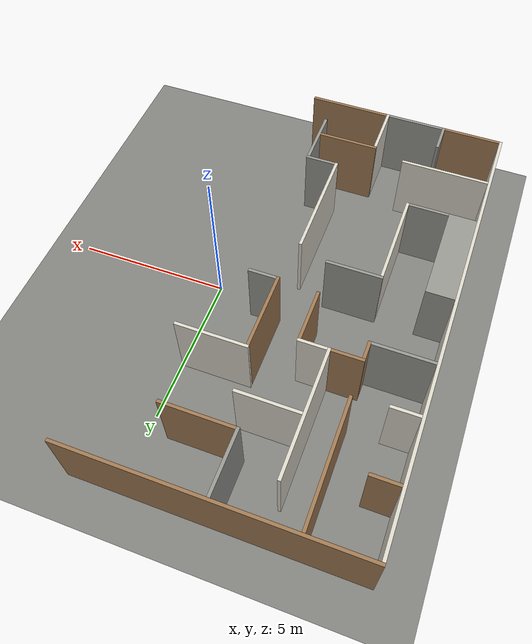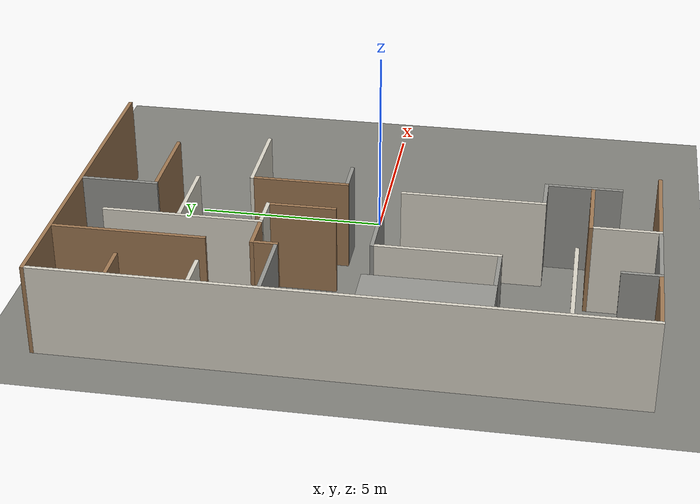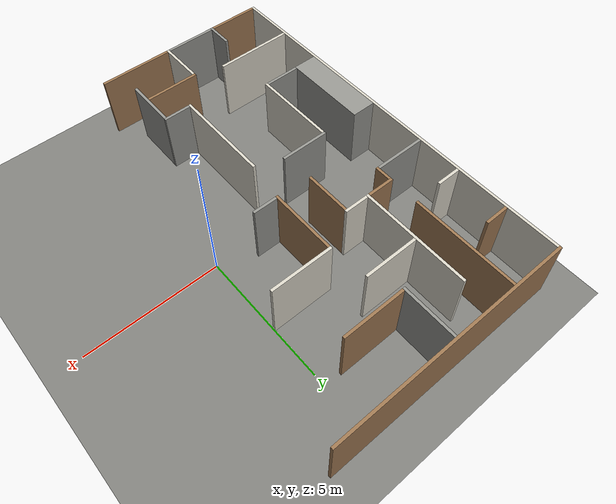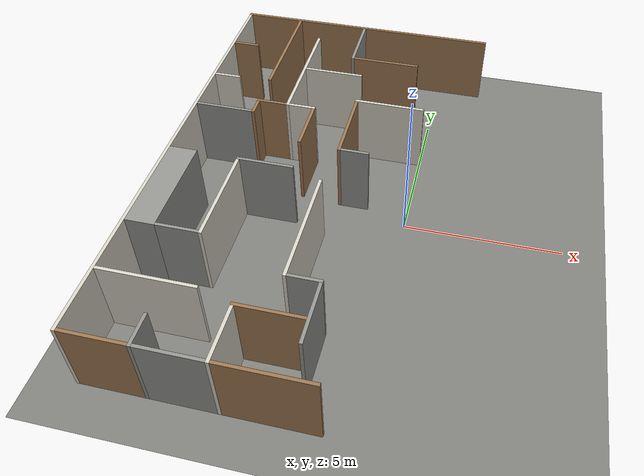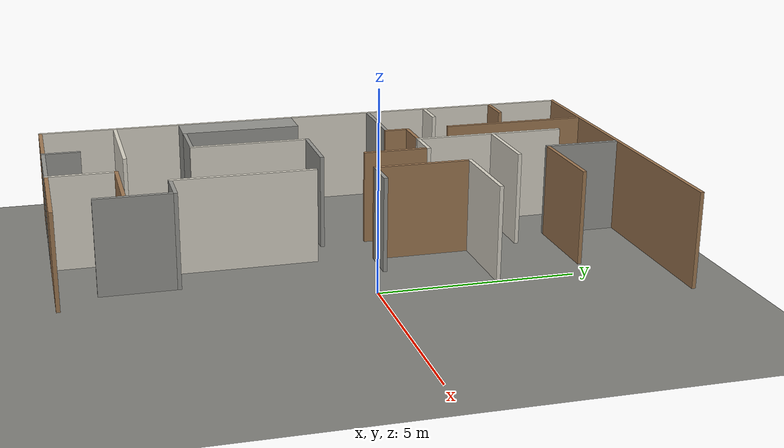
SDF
<sdf version="1.9">
 <world name="arena_world">
  <model name="ground_plane">
   <static>true</static>
   <link name="link">
    <collision name="collision">
     <geometry><plane><normal>0 0 1</normal><size>15.00 15.00</size></plane></geometry>
     <surface>
      <friction><ode><mu>0.8</mu><mu2>0.8</mu2></ode></friction>
      <contact><ode><kp>1e9</kp><kd>1.0</kd></ode></contact>
     </surface>
    </collision>
    <visual name="visual">
     <geometry><plane><normal>0 0 1</normal><size>15.00 15.00</size></plane></geometry>
     <material>
      <ambient>0.45 0.45 0.44 1</ambient>
      <diffuse>0.5 0.5 0.48 1</diffuse>
      <specular>0.15 0.15 0.15 1</specular>
      <pbr><metal><roughness>0.95</roughness><metalness>0.0</metalness></metal></pbr>
     </material>
    </visual>
   </link>
  </model>
  <model name="wall_000">
   <static>true</static>
   <pose>-2.9500 7.4500 1.2200 0 0 0</pose>
   <link name="link">
    <collision name="collision">
     <geometry><box><size>9.1000 0.1000 2.4400</size></box></geometry>
     <surface>
      <friction><ode><mu>0.7</mu><mu2>0.7</mu2></ode></friction>
      <contact><ode><kp>1e9</kp><kd>1.0</kd><max_vel>0.1</max_vel><min_depth>0.001</min_depth></ode></contact>
      <bounce><restitution_coefficient>0.0</restitution_coefficient><threshold>1e6</threshold></bounce>
     </surface>
    </collision>
    <visual name="visual">
     <geometry><box><size>9.1000 0.1000 2.4400</size></box></geometry>
     <material>
      <ambient>0.55 0.42 0.28 1</ambient>
      <diffuse>0.62 0.47 0.32 1</diffuse>
      <specular>0.06 0.06 0.06 1</specular>
      <pbr><metal><roughness>0.7</roughness><metalness>0.0</metalness></metal></pbr>
     </material>
    </visual>
   </link>
  </model>
  <model name="wall_002">
   <static>true</static>
   <pose>-7.4500 -0.0500 1.2200 0 0 0</pose>
   <link name="link">
    <collision name="collision">
     <geometry><box><size>0.1000 14.9000 2.4400</size></box></geometry>
     <surface>
      <friction><ode><mu>0.7</mu><mu2>0.7</mu2></ode></friction>
      <contact><ode><kp>1e9</kp><kd>1.0</kd><max_vel>0.1</max_vel><min_depth>0.001</min_depth></ode></contact>
      <bounce><restitution_coefficient>0.0</restitution_coefficient><threshold>1e6</threshold></bounce>
     </surface>
    </collision>
    <visual name="visual">
     <geometry><box><size>0.1000 14.9000 2.4400</size></box></geometry>
     <material>
      <ambient>0.82 0.80 0.75 1</ambient>
      <diffuse>0.85 0.83 0.78 1</diffuse>
      <specular>0.05 0.05 0.05 1</specular>
      <pbr><metal><roughness>0.85</roughness><metalness>0.0</metalness></metal></pbr>
     </material>
    </visual>
   </link>
  </model>
  <model name="wall_003">
   <static>true</static>
   <pose>-5.4500 5.4500 1.2200 0 0 0</pose>
   <link name="link">
    <collision name="collision">
     <geometry><box><size>0.1000 3.9000 2.4400</size></box></geometry>
     <surface>
      <friction><ode><mu>0.7</mu><mu2>0.7</mu2></ode></friction>
      <contact><ode><kp>1e9</kp><kd>1.0</kd><max_vel>0.1</max_vel><min_depth>0.001</min_depth></ode></contact>
      <bounce><restitution_coefficient>0.0</restitution_coefficient><threshold>1e6</threshold></bounce>
     </surface>
    </collision>
    <visual name="visual">
     <geometry><box><size>0.1000 3.9000 2.4400</size></box></geometry>
     <material>
      <ambient>0.55 0.42 0.28 1</ambient>
      <diffuse>0.62 0.47 0.32 1</diffuse>
      <specular>0.06 0.06 0.06 1</specular>
      <pbr><metal><roughness>0.7</roughness><metalness>0.0</metalness></metal></pbr>
     </material>
    </visual>
   </link>
  </model>
  <model name="wall_004">
   <static>true</static>
   <pose>-2.9500 6.4000 1.2200 0 0 0</pose>
   <link name="link">
    <collision name="collision">
     <geometry><box><size>0.1000 2.0000 2.4400</size></box></geometry>
     <surface>
      <friction><ode><mu>0.7</mu><mu2>0.7</mu2></ode></friction>
      <contact><ode><kp>1e9</kp><kd>1.0</kd><max_vel>0.1</max_vel><min_depth>0.001</min_depth></ode></contact>
      <bounce><restitution_coefficient>0.0</restitution_coefficient><threshold>1e6</threshold></bounce>
     </surface>
    </collision>
    <visual name="visual">
     <geometry><box><size>0.1000 2.0000 2.4400</size></box></geometry>
     <material>
      <ambient>0.55 0.55 0.53 1</ambient>
      <diffuse>0.58 0.58 0.56 1</diffuse>
      <specular>0.08 0.08 0.08 1</specular>
      <pbr><metal><roughness>0.9</roughness><metalness>0.0</metalness></metal></pbr>
     </material>
    </visual>
   </link>
  </model>
  <model name="wall_009">
   <static>true</static>
   <pose>-4.4500 4.3500 1.2200 0 0 0</pose>
   <link name="link">
    <collision name="collision">
     <geometry><box><size>0.1000 4.1000 2.4400</size></box></geometry>
     <surface>
      <friction><ode><mu>0.7</mu><mu2>0.7</mu2></ode></friction>
      <contact><ode><kp>1e9</kp><kd>1.0</kd><max_vel>0.1</max_vel><min_depth>0.001</min_depth></ode></contact>
      <bounce><restitution_coefficient>0.0</restitution_coefficient><threshold>1e6</threshold></bounce>
     </surface>
    </collision>
    <visual name="visual">
     <geometry><box><size>0.1000 4.1000 2.4400</size></box></geometry>
     <material>
      <ambient>0.82 0.80 0.75 1</ambient>
      <diffuse>0.85 0.83 0.78 1</diffuse>
      <specular>0.05 0.05 0.05 1</specular>
      <pbr><metal><roughness>0.85</roughness><metalness>0.0</metalness></metal></pbr>
     </material>
    </visual>
   </link>
  </model>
  <model name="wall_010">
   <static>true</static>
   <pose>-6.9500 5.4500 1.2200 0 0 0</pose>
   <link name="link">
    <collision name="collision">
     <geometry><box><size>0.9000 0.1000 2.4400</size></box></geometry>
     <surface>
      <friction><ode><mu>0.7</mu><mu2>0.7</mu2></ode></friction>
      <contact><ode><kp>1e9</kp><kd>1.0</kd><max_vel>0.1</max_vel><min_depth>0.001</min_depth></ode></contact>
      <bounce><restitution_coefficient>0.0</restitution_coefficient><threshold>1e6</threshold></bounce>
     </surface>
    </collision>
    <visual name="visual">
     <geometry><box><size>0.9000 0.1000 2.4400</size></box></geometry>
     <material>
      <ambient>0.55 0.42 0.28 1</ambient>
      <diffuse>0.62 0.47 0.32 1</diffuse>
      <specular>0.06 0.06 0.06 1</specular>
      <pbr><metal><roughness>0.7</roughness><metalness>0.0</metalness></metal></pbr>
     </material>
    </visual>
   </link>
  </model>
  <model name="wall_011">
   <static>true</static>
   <pose>-1.7500 5.4500 1.2200 0 0 0</pose>
   <link name="link">
    <collision name="collision">
     <geometry><box><size>2.3000 0.1000 2.4400</size></box></geometry>
     <surface>
      <friction><ode><mu>0.7</mu><mu2>0.7</mu2></ode></friction>
      <contact><ode><kp>1e9</kp><kd>1.0</kd><max_vel>0.1</max_vel><min_depth>0.001</min_depth></ode></contact>
      <bounce><restitution_coefficient>0.0</restitution_coefficient><threshold>1e6</threshold></bounce>
     </surface>
    </collision>
    <visual name="visual">
     <geometry><box><size>2.3000 0.1000 2.4400</size></box></geometry>
     <material>
      <ambient>0.55 0.42 0.28 1</ambient>
      <diffuse>0.62 0.47 0.32 1</diffuse>
      <specular>0.06 0.06 0.06 1</specular>
      <pbr><metal><roughness>0.7</roughness><metalness>0.0</metalness></metal></pbr>
     </material>
    </visual>
   </link>
  </model>
  <model name="wall_013">
   <static>true</static>
   <pose>-3.4000 4.4500 1.2200 0 0 0</pose>
   <link name="link">
    <collision name="collision">
     <geometry><box><size>2.0000 0.1000 2.4400</size></box></geometry>
     <surface>
      <friction><ode><mu>0.7</mu><mu2>0.7</mu2></ode></friction>
      <contact><ode><kp>1e9</kp><kd>1.0</kd><max_vel>0.1</max_vel><min_depth>0.001</min_depth></ode></contact>
      <bounce><restitution_coefficient>0.0</restitution_coefficient><threshold>1e6</threshold></bounce>
     </surface>
    </collision>
    <visual name="visual">
     <geometry><box><size>2.0000 0.1000 2.4400</size></box></geometry>
     <material>
      <ambient>0.82 0.80 0.75 1</ambient>
      <diffuse>0.85 0.83 0.78 1</diffuse>
      <specular>0.05 0.05 0.05 1</specular>
      <pbr><metal><roughness>0.85</roughness><metalness>0.0</metalness></metal></pbr>
     </material>
    </visual>
   </link>
  </model>
  <model name="wall_018">
   <static>true</static>
   <pose>-6.9500 3.4500 1.2200 0 0 0</pose>
   <link name="link">
    <collision name="collision">
     <geometry><box><size>0.9000 0.1000 2.4400</size></box></geometry>
     <surface>
      <friction><ode><mu>0.7</mu><mu2>0.7</mu2></ode></friction>
      <contact><ode><kp>1e9</kp><kd>1.0</kd><max_vel>0.1</max_vel><min_depth>0.001</min_depth></ode></contact>
      <bounce><restitution_coefficient>0.0</restitution_coefficient><threshold>1e6</threshold></bounce>
     </surface>
    </collision>
    <visual name="visual">
     <geometry><box><size>0.9000 0.1000 2.4400</size></box></geometry>
     <material>
      <ambient>0.82 0.80 0.75 1</ambient>
      <diffuse>0.85 0.83 0.78 1</diffuse>
      <specular>0.05 0.05 0.05 1</specular>
      <pbr><metal><roughness>0.85</roughness><metalness>0.0</metalness></metal></pbr>
     </material>
    </visual>
   </link>
  </model>
  <model name="wall_020">
   <static>true</static>
   <pose>-1.1500 3.0500 1.2200 0 0 0</pose>
   <link name="link">
    <collision name="collision">
     <geometry><box><size>2.3000 0.1000 2.4400</size></box></geometry>
     <surface>
      <friction><ode><mu>0.7</mu><mu2>0.7</mu2></ode></friction>
      <contact><ode><kp>1e9</kp><kd>1.0</kd><max_vel>0.1</max_vel><min_depth>0.001</min_depth></ode></contact>
      <bounce><restitution_coefficient>0.0</restitution_coefficient><threshold>1e6</threshold></bounce>
     </surface>
    </collision>
    <visual name="visual">
     <geometry><box><size>2.3000 0.1000 2.4400</size></box></geometry>
     <material>
      <ambient>0.82 0.80 0.75 1</ambient>
      <diffuse>0.85 0.83 0.78 1</diffuse>
      <specular>0.05 0.05 0.05 1</specular>
      <pbr><metal><roughness>0.85</roughness><metalness>0.0</metalness></metal></pbr>
     </material>
    </visual>
   </link>
  </model>
  <model name="wall_021">
   <static>true</static>
   <pose>-2.2500 1.7500 1.2200 0 0 0</pose>
   <link name="link">
    <collision name="collision">
     <geometry><box><size>0.1000 2.5000 2.4400</size></box></geometry>
     <surface>
      <friction><ode><mu>0.7</mu><mu2>0.7</mu2></ode></friction>
      <contact><ode><kp>1e9</kp><kd>1.0</kd><max_vel>0.1</max_vel><min_depth>0.001</min_depth></ode></contact>
      <bounce><restitution_coefficient>0.0</restitution_coefficient><threshold>1e6</threshold></bounce>
     </surface>
    </collision>
    <visual name="visual">
     <geometry><box><size>0.1000 2.5000 2.4400</size></box></geometry>
     <material>
      <ambient>0.55 0.42 0.28 1</ambient>
      <diffuse>0.62 0.47 0.32 1</diffuse>
      <specular>0.06 0.06 0.06 1</specular>
      <pbr><metal><roughness>0.7</roughness><metalness>0.0</metalness></metal></pbr>
     </material>
    </visual>
   </link>
  </model>
  <model name="wall_024">
   <static>true</static>
   <pose>-5.0000 2.3500 1.2200 0 0 0</pose>
   <link name="link">
    <collision name="collision">
     <geometry><box><size>1.0000 0.1000 2.4400</size></box></geometry>
     <surface>
      <friction><ode><mu>0.7</mu><mu2>0.7</mu2></ode></friction>
      <contact><ode><kp>1e9</kp><kd>1.0</kd><max_vel>0.1</max_vel><min_depth>0.001</min_depth></ode></contact>
      <bounce><restitution_coefficient>0.0</restitution_coefficient><threshold>1e6</threshold></bounce>
     </surface>
    </collision>
    <visual name="visual">
     <geometry><box><size>1.0000 0.1000 2.4400</size></box></geometry>
     <material>
      <ambient>0.55 0.42 0.28 1</ambient>
      <diffuse>0.62 0.47 0.32 1</diffuse>
      <specular>0.06 0.06 0.06 1</specular>
      <pbr><metal><roughness>0.7</roughness><metalness>0.0</metalness></metal></pbr>
     </material>
    </visual>
   </link>
  </model>
  <model name="wall_025">
   <static>true</static>
   <pose>-3.9500 2.3500 1.2200 0 0 0</pose>
   <link name="link">
    <collision name="collision">
     <geometry><box><size>0.9000 0.1000 2.4400</size></box></geometry>
     <surface>
      <friction><ode><mu>0.7</mu><mu2>0.7</mu2></ode></friction>
      <contact><ode><kp>1e9</kp><kd>1.0</kd><max_vel>0.1</max_vel><min_depth>0.001</min_depth></ode></contact>
      <bounce><restitution_coefficient>0.0</restitution_coefficient><threshold>1e6</threshold></bounce>
     </surface>
    </collision>
    <visual name="visual">
     <geometry><box><size>0.9000 0.1000 2.4400</size></box></geometry>
     <material>
      <ambient>0.82 0.80 0.75 1</ambient>
      <diffuse>0.85 0.83 0.78 1</diffuse>
      <specular>0.05 0.05 0.05 1</specular>
      <pbr><metal><roughness>0.85</roughness><metalness>0.0</metalness></metal></pbr>
     </material>
    </visual>
   </link>
  </model>
  <model name="wall_028">
   <static>true</static>
   <pose>-5.4500 2.0000 1.2200 0 0 0</pose>
   <link name="link">
    <collision name="collision">
     <geometry><box><size>0.1000 0.6000 2.4400</size></box></geometry>
     <surface>
      <friction><ode><mu>0.7</mu><mu2>0.7</mu2></ode></friction>
      <contact><ode><kp>1e9</kp><kd>1.0</kd><max_vel>0.1</max_vel><min_depth>0.001</min_depth></ode></contact>
      <bounce><restitution_coefficient>0.0</restitution_coefficient><threshold>1e6</threshold></bounce>
     </surface>
    </collision>
    <visual name="visual">
     <geometry><box><size>0.1000 0.6000 2.4400</size></box></geometry>
     <material>
      <ambient>0.55 0.42 0.28 1</ambient>
      <diffuse>0.62 0.47 0.32 1</diffuse>
      <specular>0.06 0.06 0.06 1</specular>
      <pbr><metal><roughness>0.7</roughness><metalness>0.0</metalness></metal></pbr>
     </material>
    </visual>
   </link>
  </model>
  <model name="wall_029">
   <static>true</static>
   <pose>-3.5500 1.4500 1.2200 0 0 0</pose>
   <link name="link">
    <collision name="collision">
     <geometry><box><size>0.1000 1.7000 2.4400</size></box></geometry>
     <surface>
      <friction><ode><mu>0.7</mu><mu2>0.7</mu2></ode></friction>
      <contact><ode><kp>1e9</kp><kd>1.0</kd><max_vel>0.1</max_vel><min_depth>0.001</min_depth></ode></contact>
      <bounce><restitution_coefficient>0.0</restitution_coefficient><threshold>1e6</threshold></bounce>
     </surface>
    </collision>
    <visual name="visual">
     <geometry><box><size>0.1000 1.7000 2.4400</size></box></geometry>
     <material>
      <ambient>0.55 0.42 0.28 1</ambient>
      <diffuse>0.62 0.47 0.32 1</diffuse>
      <specular>0.06 0.06 0.06 1</specular>
      <pbr><metal><roughness>0.7</roughness><metalness>0.0</metalness></metal></pbr>
     </material>
    </visual>
   </link>
  </model>
  <model name="wall_030">
   <static>true</static>
   <pose>-6.4500 1.7500 1.2200 0 0 0</pose>
   <link name="link">
    <collision name="collision">
     <geometry><box><size>1.9000 0.1000 2.4400</size></box></geometry>
     <surface>
      <friction><ode><mu>0.7</mu><mu2>0.7</mu2></ode></friction>
      <contact><ode><kp>1e9</kp><kd>1.0</kd><max_vel>0.1</max_vel><min_depth>0.001</min_depth></ode></contact>
      <bounce><restitution_coefficient>0.0</restitution_coefficient><threshold>1e6</threshold></bounce>
     </surface>
    </collision>
    <visual name="visual">
     <geometry><box><size>1.9000 0.1000 2.4400</size></box></geometry>
     <material>
      <ambient>0.55 0.55 0.53 1</ambient>
      <diffuse>0.58 0.58 0.56 1</diffuse>
      <specular>0.08 0.08 0.08 1</specular>
      <pbr><metal><roughness>0.9</roughness><metalness>0.0</metalness></metal></pbr>
     </material>
    </visual>
   </link>
  </model>
  <model name="wall_034">
   <static>true</static>
   <pose>-1.7500 0.5500 1.2200 0 0 0</pose>
   <link name="link">
    <collision name="collision">
     <geometry><box><size>0.9000 0.1000 2.4400</size></box></geometry>
     <surface>
      <friction><ode><mu>0.7</mu><mu2>0.7</mu2></ode></friction>
      <contact><ode><kp>1e9</kp><kd>1.0</kd><max_vel>0.1</max_vel><min_depth>0.001</min_depth></ode></contact>
      <bounce><restitution_coefficient>0.0</restitution_coefficient><threshold>1e6</threshold></bounce>
     </surface>
    </collision>
    <visual name="visual">
     <geometry><box><size>0.9000 0.1000 2.4400</size></box></geometry>
     <material>
      <ambient>0.55 0.55 0.53 1</ambient>
      <diffuse>0.58 0.58 0.56 1</diffuse>
      <specular>0.08 0.08 0.08 1</specular>
      <pbr><metal><roughness>0.9</roughness><metalness>0.0</metalness></metal></pbr>
     </material>
    </visual>
   </link>
  </model>
  <model name="wall_038">
   <static>true</static>
   <pose>-6.9500 -2.1000 1.2200 0 0 0</pose>
   <link name="link">
    <collision name="collision">
     <geometry><box><size>0.9000 3.2000 2.4400</size></box></geometry>
     <surface>
      <friction><ode><mu>0.7</mu><mu2>0.7</mu2></ode></friction>
      <contact><ode><kp>1e9</kp><kd>1.0</kd><max_vel>0.1</max_vel><min_depth>0.001</min_depth></ode></contact>
      <bounce><restitution_coefficient>0.0</restitution_coefficient><threshold>1e6</threshold></bounce>
     </surface>
    </collision>
    <visual name="visual">
     <geometry><box><size>0.9000 3.2000 2.4400</size></box></geometry>
     <material>
      <ambient>0.55 0.55 0.53 1</ambient>
      <diffuse>0.58 0.58 0.56 1</diffuse>
      <specular>0.08 0.08 0.08 1</specular>
      <pbr><metal><roughness>0.9</roughness><metalness>0.0</metalness></metal></pbr>
     </material>
    </visual>
   </link>
  </model>
  <model name="wall_039">
   <static>true</static>
   <pose>-4.3000 -0.5500 1.2200 0 0 0</pose>
   <link name="link">
    <collision name="collision">
     <geometry><box><size>1.8000 0.1000 2.4400</size></box></geometry>
     <surface>
      <friction><ode><mu>0.7</mu><mu2>0.7</mu2></ode></friction>
      <contact><ode><kp>1e9</kp><kd>1.0</kd><max_vel>0.1</max_vel><min_depth>0.001</min_depth></ode></contact>
      <bounce><restitution_coefficient>0.0</restitution_coefficient><threshold>1e6</threshold></bounce>
     </surface>
    </collision>
    <visual name="visual">
     <geometry><box><size>1.8000 0.1000 2.4400</size></box></geometry>
     <material>
      <ambient>0.55 0.55 0.53 1</ambient>
      <diffuse>0.58 0.58 0.56 1</diffuse>
      <specular>0.08 0.08 0.08 1</specular>
      <pbr><metal><roughness>0.9</roughness><metalness>0.0</metalness></metal></pbr>
     </material>
    </visual>
   </link>
  </model>
  <model name="wall_041">
   <static>true</static>
   <pose>-5.1500 -2.1500 1.2200 0 0 0</pose>
   <link name="link">
    <collision name="collision">
     <geometry><box><size>0.1000 3.1000 2.4400</size></box></geometry>
     <surface>
      <friction><ode><mu>0.7</mu><mu2>0.7</mu2></ode></friction>
      <contact><ode><kp>1e9</kp><kd>1.0</kd><max_vel>0.1</max_vel><min_depth>0.001</min_depth></ode></contact>
      <bounce><restitution_coefficient>0.0</restitution_coefficient><threshold>1e6</threshold></bounce>
     </surface>
    </collision>
    <visual name="visual">
     <geometry><box><size>0.1000 3.1000 2.4400</size></box></geometry>
     <material>
      <ambient>0.82 0.80 0.75 1</ambient>
      <diffuse>0.85 0.83 0.78 1</diffuse>
      <specular>0.05 0.05 0.05 1</specular>
      <pbr><metal><roughness>0.85</roughness><metalness>0.0</metalness></metal></pbr>
     </material>
    </visual>
   </link>
  </model>
  <model name="wall_044">
   <static>true</static>
   <pose>-2.4500 -2.7500 1.2200 0 0 0</pose>
   <link name="link">
    <collision name="collision">
     <geometry><box><size>0.1000 3.7000 2.4400</size></box></geometry>
     <surface>
      <friction><ode><mu>0.7</mu><mu2>0.7</mu2></ode></friction>
      <contact><ode><kp>1e9</kp><kd>1.0</kd><max_vel>0.1</max_vel><min_depth>0.001</min_depth></ode></contact>
      <bounce><restitution_coefficient>0.0</restitution_coefficient><threshold>1e6</threshold></bounce>
     </surface>
    </collision>
    <visual name="visual">
     <geometry><box><size>0.1000 3.7000 2.4400</size></box></geometry>
     <material>
      <ambient>0.82 0.80 0.75 1</ambient>
      <diffuse>0.85 0.83 0.78 1</diffuse>
      <specular>0.05 0.05 0.05 1</specular>
      <pbr><metal><roughness>0.85</roughness><metalness>0.0</metalness></metal></pbr>
     </material>
    </visual>
   </link>
  </model>
  <model name="wall_048">
   <static>true</static>
   <pose>-5.8500 -3.6500 1.2200 0 0 0</pose>
   <link name="link">
    <collision name="collision">
     <geometry><box><size>1.3000 0.1000 2.4400</size></box></geometry>
     <surface>
      <friction><ode><mu>0.7</mu><mu2>0.7</mu2></ode></friction>
      <contact><ode><kp>1e9</kp><kd>1.0</kd><max_vel>0.1</max_vel><min_depth>0.001</min_depth></ode></contact>
      <bounce><restitution_coefficient>0.0</restitution_coefficient><threshold>1e6</threshold></bounce>
     </surface>
    </collision>
    <visual name="visual">
     <geometry><box><size>1.3000 0.1000 2.4400</size></box></geometry>
     <material>
      <ambient>0.55 0.55 0.53 1</ambient>
      <diffuse>0.58 0.58 0.56 1</diffuse>
      <specular>0.08 0.08 0.08 1</specular>
      <pbr><metal><roughness>0.9</roughness><metalness>0.0</metalness></metal></pbr>
     </material>
    </visual>
   </link>
  </model>
  <model name="wall_049">
   <static>true</static>
   <pose>-1.9000 -4.5500 1.2200 0 0 0</pose>
   <link name="link">
    <collision name="collision">
     <geometry><box><size>1.0000 0.1000 2.4400</size></box></geometry>
     <surface>
      <friction><ode><mu>0.7</mu><mu2>0.7</mu2></ode></friction>
      <contact><ode><kp>1e9</kp><kd>1.0</kd><max_vel>0.1</max_vel><min_depth>0.001</min_depth></ode></contact>
      <bounce><restitution_coefficient>0.0</restitution_coefficient><threshold>1e6</threshold></bounce>
     </surface>
    </collision>
    <visual name="visual">
     <geometry><box><size>1.0000 0.1000 2.4400</size></box></geometry>
     <material>
      <ambient>0.55 0.55 0.53 1</ambient>
      <diffuse>0.58 0.58 0.56 1</diffuse>
      <specular>0.08 0.08 0.08 1</specular>
      <pbr><metal><roughness>0.9</roughness><metalness>0.0</metalness></metal></pbr>
     </material>
    </visual>
   </link>
  </model>
  <model name="wall_051">
   <static>true</static>
   <pose>-1.4500 -5.5500 1.2200 0 0 0</pose>
   <link name="link">
    <collision name="collision">
     <geometry><box><size>0.1000 1.9000 2.4400</size></box></geometry>
     <surface>
      <friction><ode><mu>0.7</mu><mu2>0.7</mu2></ode></friction>
      <contact><ode><kp>1e9</kp><kd>1.0</kd><max_vel>0.1</max_vel><min_depth>0.001</min_depth></ode></contact>
      <bounce><restitution_coefficient>0.0</restitution_coefficient><threshold>1e6</threshold></bounce>
     </surface>
    </collision>
    <visual name="visual">
     <geometry><box><size>0.1000 1.9000 2.4400</size></box></geometry>
     <material>
      <ambient>0.55 0.55 0.53 1</ambient>
      <diffuse>0.58 0.58 0.56 1</diffuse>
      <specular>0.08 0.08 0.08 1</specular>
      <pbr><metal><roughness>0.9</roughness><metalness>0.0</metalness></metal></pbr>
     </material>
    </visual>
   </link>
  </model>
  <model name="wall_052">
   <static>true</static>
   <pose>-5.9500 -5.4500 1.2200 0 0 0</pose>
   <link name="link">
    <collision name="collision">
     <geometry><box><size>2.9000 0.1000 2.4400</size></box></geometry>
     <surface>
      <friction><ode><mu>0.7</mu><mu2>0.7</mu2></ode></friction>
      <contact><ode><kp>1e9</kp><kd>1.0</kd><max_vel>0.1</max_vel><min_depth>0.001</min_depth></ode></contact>
      <bounce><restitution_coefficient>0.0</restitution_coefficient><threshold>1e6</threshold></bounce>
     </surface>
    </collision>
    <visual name="visual">
     <geometry><box><size>2.9000 0.1000 2.4400</size></box></geometry>
     <material>
      <ambient>0.82 0.80 0.75 1</ambient>
      <diffuse>0.85 0.83 0.78 1</diffuse>
      <specular>0.05 0.05 0.05 1</specular>
      <pbr><metal><roughness>0.85</roughness><metalness>0.0</metalness></metal></pbr>
     </material>
    </visual>
   </link>
  </model>
  <model name="wall_055">
   <static>true</static>
   <pose>-2.5000 -5.7500 1.2200 0 0 0</pose>
   <link name="link">
    <collision name="collision">
     <geometry><box><size>2.0000 0.1000 2.4400</size></box></geometry>
     <surface>
      <friction><ode><mu>0.7</mu><mu2>0.7</mu2></ode></friction>
      <contact><ode><kp>1e9</kp><kd>1.0</kd><max_vel>0.1</max_vel><min_depth>0.001</min_depth></ode></contact>
      <bounce><restitution_coefficient>0.0</restitution_coefficient><threshold>1e6</threshold></bounce>
     </surface>
    </collision>
    <visual name="visual">
     <geometry><box><size>2.0000 0.1000 2.4400</size></box></geometry>
     <material>
      <ambient>0.55 0.42 0.28 1</ambient>
      <diffuse>0.62 0.47 0.32 1</diffuse>
      <specular>0.06 0.06 0.06 1</specular>
      <pbr><metal><roughness>0.7</roughness><metalness>0.0</metalness></metal></pbr>
     </material>
    </visual>
   </link>
  </model>
  <model name="wall_056">
   <static>true</static>
   <pose>-3.4500 -6.6500 1.2200 0 0 0</pose>
   <link name="link">
    <collision name="collision">
     <geometry><box><size>0.1000 1.7000 2.4400</size></box></geometry>
     <surface>
      <friction><ode><mu>0.7</mu><mu2>0.7</mu2></ode></friction>
      <contact><ode><kp>1e9</kp><kd>1.0</kd><max_vel>0.1</max_vel><min_depth>0.001</min_depth></ode></contact>
      <bounce><restitution_coefficient>0.0</restitution_coefficient><threshold>1e6</threshold></bounce>
     </surface>
    </collision>
    <visual name="visual">
     <geometry><box><size>0.1000 1.7000 2.4400</size></box></geometry>
     <material>
      <ambient>0.82 0.80 0.75 1</ambient>
      <diffuse>0.85 0.83 0.78 1</diffuse>
      <specular>0.05 0.05 0.05 1</specular>
      <pbr><metal><roughness>0.85</roughness><metalness>0.0</metalness></metal></pbr>
     </material>
    </visual>
   </link>
  </model>
  <model name="wall_057">
   <static>true</static>
   <pose>-5.4500 -7.0000 1.2200 0 0 0</pose>
   <link name="link">
    <collision name="collision">
     <geometry><box><size>0.1000 1.0000 2.4400</size></box></geometry>
     <surface>
      <friction><ode><mu>0.7</mu><mu2>0.7</mu2></ode></friction>
      <contact><ode><kp>1e9</kp><kd>1.0</kd><max_vel>0.1</max_vel><min_depth>0.001</min_depth></ode></contact>
      <bounce><restitution_coefficient>0.0</restitution_coefficient><threshold>1e6</threshold></bounce>
     </surface>
    </collision>
    <visual name="visual">
     <geometry><box><size>0.1000 1.0000 2.4400</size></box></geometry>
     <material>
      <ambient>0.55 0.55 0.53 1</ambient>
      <diffuse>0.58 0.58 0.56 1</diffuse>
      <specular>0.08 0.08 0.08 1</specular>
      <pbr><metal><roughness>0.9</roughness><metalness>0.0</metalness></metal></pbr>
     </material>
    </visual>
   </link>
  </model>
  <model name="wall_059">
   <static>true</static>
   <pose>-6.4500 -7.4500 1.2200 0 0 0</pose>
   <link name="link">
    <collision name="collision">
     <geometry><box><size>1.9000 0.1000 2.4400</size></box></geometry>
     <surface>
      <friction><ode><mu>0.7</mu><mu2>0.7</mu2></ode></friction>
      <contact><ode><kp>1e9</kp><kd>1.0</kd><max_vel>0.1</max_vel><min_depth>0.001</min_depth></ode></contact>
      <bounce><restitution_coefficient>0.0</restitution_coefficient><threshold>1e6</threshold></bounce>
     </surface>
    </collision>
    <visual name="visual">
     <geometry><box><size>1.9000 0.1000 2.4400</size></box></geometry>
     <material>
      <ambient>0.55 0.42 0.28 1</ambient>
      <diffuse>0.62 0.47 0.32 1</diffuse>
      <specular>0.06 0.06 0.06 1</specular>
      <pbr><metal><roughness>0.7</roughness><metalness>0.0</metalness></metal></pbr>
     </material>
    </visual>
   </link>
  </model>
  <model name="wall_060">
   <static>true</static>
   <pose>-4.4500 -7.4500 1.2200 0 0 0</pose>
   <link name="link">
    <collision name="collision">
     <geometry><box><size>1.9000 0.1000 2.4400</size></box></geometry>
     <surface>
      <friction><ode><mu>0.7</mu><mu2>0.7</mu2></ode></friction>
      <contact><ode><kp>1e9</kp><kd>1.0</kd><max_vel>0.1</max_vel><min_depth>0.001</min_depth></ode></contact>
      <bounce><restitution_coefficient>0.0</restitution_coefficient><threshold>1e6</threshold></bounce>
     </surface>
    </collision>
    <visual name="visual">
     <geometry><box><size>1.9000 0.1000 2.4400</size></box></geometry>
     <material>
      <ambient>0.55 0.55 0.53 1</ambient>
      <diffuse>0.58 0.58 0.56 1</diffuse>
      <specular>0.08 0.08 0.08 1</specular>
      <pbr><metal><roughness>0.9</roughness><metalness>0.0</metalness></metal></pbr>
     </material>
    </visual>
   </link>
  </model>
  <model name="wall_061">
   <static>true</static>
   <pose>-2.0500 -7.4500 1.2200 0 0 0</pose>
   <link name="link">
    <collision name="collision">
     <geometry><box><size>2.7000 0.1000 2.4400</size></box></geometry>
     <surface>
      <friction><ode><mu>0.7</mu><mu2>0.7</mu2></ode></friction>
      <contact><ode><kp>1e9</kp><kd>1.0</kd><max_vel>0.1</max_vel><min_depth>0.001</min_depth></ode></contact>
      <bounce><restitution_coefficient>0.0</restitution_coefficient><threshold>1e6</threshold></bounce>
     </surface>
    </collision>
    <visual name="visual">
     <geometry><box><size>2.7000 0.1000 2.4400</size></box></geometry>
     <material>
      <ambient>0.55 0.42 0.28 1</ambient>
      <diffuse>0.62 0.47 0.32 1</diffuse>
      <specular>0.06 0.06 0.06 1</specular>
      <pbr><metal><roughness>0.7</roughness><metalness>0.0</metalness></metal></pbr>
     </material>
    </visual>
   </link>
  </model>
 </world>
</sdf>
